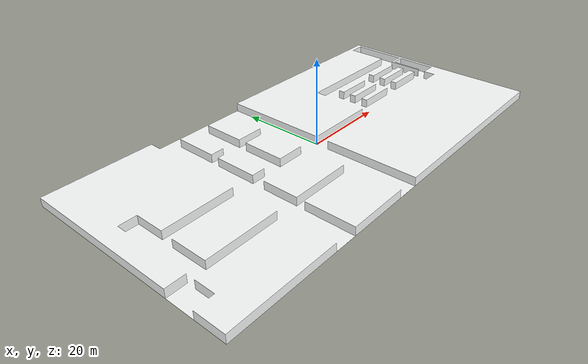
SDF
<sdf version='1.11'>
  <world name='map_world'>

    <physics name="1ms" type="ignored">
      <max_step_size>0.001</max_step_size>
      <real_time_factor>1.0</real_time_factor>
    </physics>
    <plugin filename="gz-sim-physics-system" name="gz::sim::systems::Physics"></plugin>
    <plugin filename="gz-sim-scene-broadcaster-system" name="gz::sim::systems::SceneBroadcaster"></plugin>
    <plugin filename="gz-sim-user-commands-system" name="gz::sim::systems::UserCommands"></plugin>
    <plugin filename="gz-sim-sensors-system" name="gz::sim::systems::Sensors"></plugin>

    <light type="directional" name="sun">
      <cast_shadows>true</cast_shadows>
      <pose>0 0 10 0 0 0</pose>
      <diffuse>0.8 0.8 0.8 1</diffuse>
      <specular>0.2 0.2 0.2 1</specular>
      <direction>-0.5 0.1 -0.9</direction>
    </light>

    <model name='map_env'>
      <static>true</static>
      <link name='base_link'>
        <collision name='base_link_collision'>
          <pose>0 0 0 0 0 0</pose>
          <geometry>
            <mesh>
              <scale>1 1 1</scale>
              <uri>file:///home/yesser/ros2_ws_micro_ros/stage_proj/amr_map_ws/install/amr_map/share/amr_map/meshes/base_link.STL</uri>
            </mesh>
          </geometry>
        </collision>
        <visual name='base_link_visual'>
          <pose>0 0 0 0 0 0</pose>
          <geometry>
            <mesh>
              <scale>1 1 1</scale>
              <uri>file:///home/yesser/ros2_ws_micro_ros/stage_proj/amr_map_ws/install/amr_map/share/amr_map/meshes/base_link.STL</uri>
            </mesh>
          </geometry>
          <material>
            <diffuse>0.99 1 1 1</diffuse>
            <ambient>0.99 1 1 1</ambient>
          </material>
        </visual>
      </link>
    </model>

  </world>
</sdf>
